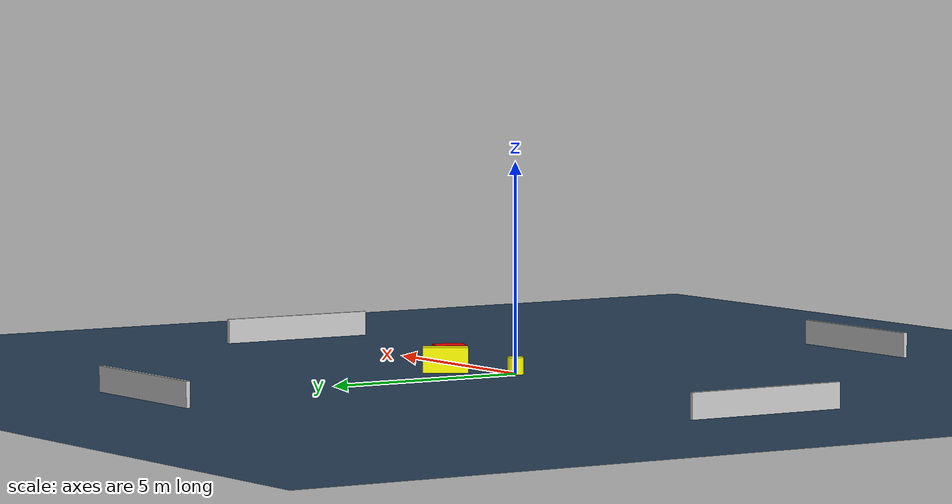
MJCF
<?xml version="1.0" ?>
<mujoco model="generated_environment">
  <option timestep="0.01" integrator="RK4" cone="elliptic"/>
  <default>
    <geom density="1"/>
  </default>
  <asset>
    <texture builtin="gradient" height="3072" name="skybox" rgb1="0.3 0.5 0.7" rgb2="0 0 0" type="skybox" width="512"/>
    <texture builtin="checker" height="300" name="groundplane" rgb1="0.2 0.3 0.4" rgb2="0.1 0.2 0.3" type="2d" width="300"/>
    <material name="groundplane" reflectance="0.2" texrepeat="5 5" texture="groundplane"/>
  </asset>
  <worldbody>
    <light dir="0 0 -1" directional="true" pos="0 0 1.5"/>
    <geom condim="3" friction="0.5 0.005 0.001" material="groundplane" name="floor" pos="0 0 0" size="0 0 0.05" type="plane"/>
    <body name="walls">
      <geom name="wall_1" condim="4" pos="-10.0 0.0 0.3" rgba="0.800000011920929 0.800000011920929 0.800000011920929 1.0" size="0.05 2.0 0.3" type="box"/>
      <geom name="wall_2" condim="4" pos="10.0 0.0 0.3" rgba="0.800000011920929 0.800000011920929 0.800000011920929 1.0" size="0.05 2.0 0.3" type="box"/>
      <geom name="wall_3" condim="4" pos="0.0 -10.0 0.3" rgba="0.800000011920929 0.800000011920929 0.800000011920929 1.0" size="2.0 0.05 0.3" type="box"/>
      <geom name="wall_4" condim="4" pos="0.0 10.0 0.3" rgba="0.800000011920929 0.800000011920929 0.800000011920929 1.0" size="2.0 0.05 0.3" type="box"/>
    </body>
    <body name="robot">
      <joint name="joint_x" type="slide" pos="0 0 0" axis="1 0 0"/>
      <joint name="joint_y" type="slide" pos="0 0 0" axis="0 1 0"/>
      <geom name="robot" type="cylinder" pos="0.0 0.0 0.2" size="0.2 0.2 0.0" mass="5.0" friction="1.0 0.005 0.0001" condim="4" rgba="1.0 1.0 0.0 1.0"/>
    </body>
    <body name="obstacle_1_movable">
      <geom name="obstacle_1_movable" condim="4" pos="1.2664479780894293 1.1503942355793983 0.3" euler="0 0 148.46461797570976" friction="0.0 0.005 0.001" rgba="1.0 1.0 0.0 1.0" size="0.22840803092896445 0.5378354878838634 0.3" type="box" mass="0.1"/>
      <joint type="free"/>
    </body>
    <body name="obstacle_2_static">
      <geom name="obstacle_2_static" condim="4" pos="1.7013739817095128 0.7602597698787505 0.3" euler="0 0 159.0290644352408" friction="0.0 0.005 0.001" rgba="1.0 0.0 0.0 1.0" size="0.27969276149846567 0.37140598834461325 0.3" type="box"/>
    </body>
  </worldbody>
  <actuator>
    <motor name="actuator_x" joint="joint_x" gear="1" ctrlrange="-1 1"/>
    <motor name="actuator_y" joint="joint_y" gear="1" ctrlrange="-1 1"/>
  </actuator>
</mujoco>
